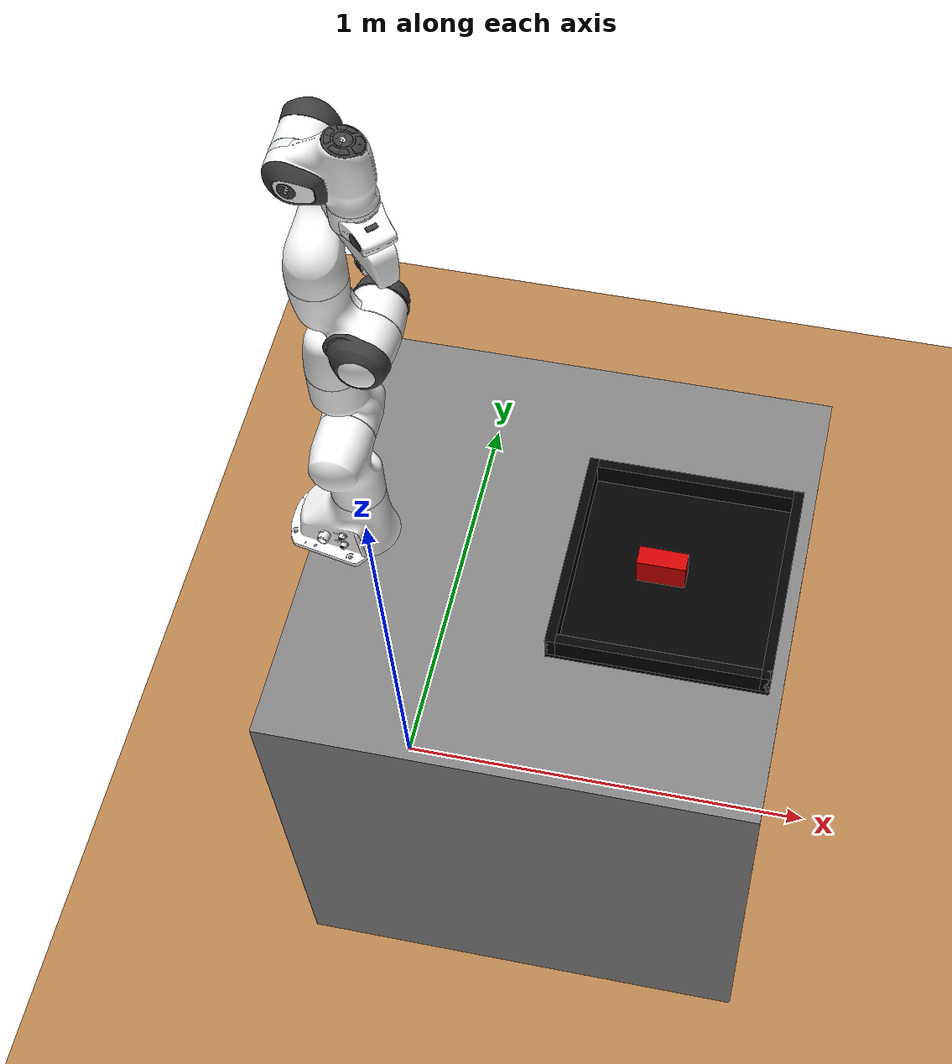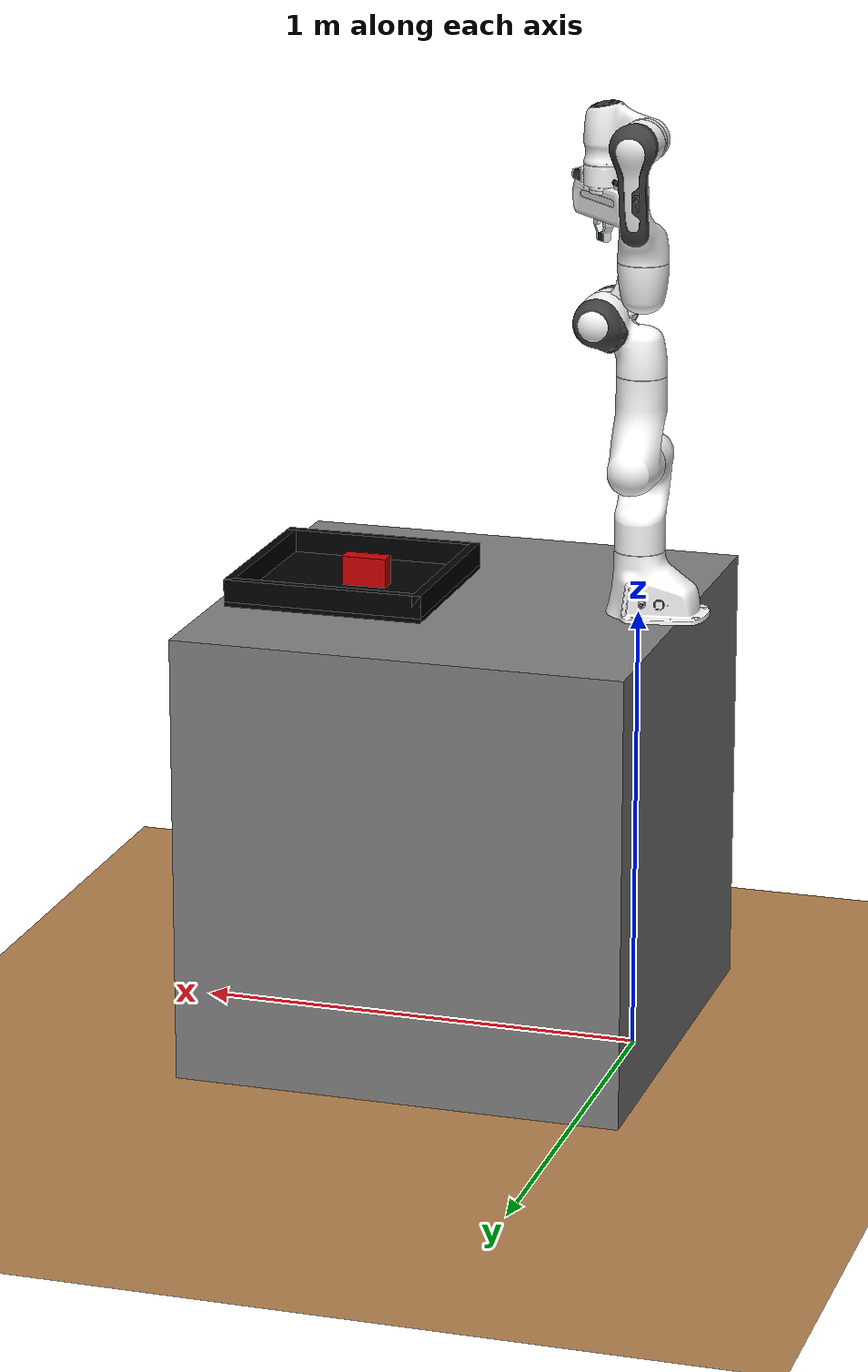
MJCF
<mujoco model="cube_scene">
  <!-- Add Franka robot -->
  <include file="panda.xml"/>

  <!-- noslip_iterations is important otherwise object slip when grasped
       (more than 3 will just slow you down and have no other effect) -->
  <option gravity="0 0 -9.81" timestep="0.001" noslip_iterations="3"
          impratio="20" cone="elliptic" density="1.2" viscosity="0.00002" integrator="implicitfast">
    <flag multiccd="enable"/>
  </option>
        <!-- impratio="20" cone="elliptic" density="1.2" viscosity="0.00002" integrator="implicitfast"> -->

  <visual>
    <map znear="0.01" zfar="50"/>
    <!-- For visualize contact -->
    <scale forcewidth="0.03" contactwidth="0.03" contactheight="0.01"/>
    <rgba contactpoint="0 0.5 0 1" />
    <global offwidth="400" offheight="400"/>
  </visual>

  <asset>
    <texture type="skybox" builtin="gradient" rgb1="0.3 0.5 0.7" rgb2="0 0 0" width="512" height="512"/>

    <texture type="2d" name="groundplane" builtin="checker" mark="edge" rgb1="0.2 0.3 0.4"
        rgb2="0.1 0.2 0.3" markrgb="0.8 0.8 0.8" width="300" height="300"/>
    <material name="groundplane" texture="groundplane" texuniform="true" texrepeat="5 5"
        reflectance="0."/>

    <!-- Floor -->
    <texture name="texplane" file="textures/wood-tiles.png" type="2d"/>
    <material name="floorplane" reflectance="0." shininess="0.0" specular="0.0" texrepeat="2 2" texture="texplane" texuniform="true"/>

    <!-- bins -->
    <texture file="textures/light-wood.png" type="2d" name="tex-light-wood"/>
    <texture file="textures/dark-wood.png" type="2d" name="tex-dark-wood"/>
    <material name="light-wood" reflectance="0" texrepeat="15 15" texture="tex-light-wood" texuniform="true"/>
    <material name="dark-wood" reflectance="0" texrepeat="5 5" texture="tex-dark-wood" texuniform="true"/>

    <!-- paper-wood table texture and material (NOTE: cube needs use square images) -->
    <texture file="textures/paper-wood.png" type="cube" name="tex-paperwood"/>
    <material name="table_paperwood" texture="tex-paperwood" texrepeat="1 1" shininess="0.0" reflectance="0.0" specular="0."/>

  </asset>

  <worldbody>
    <!-- Floor -->
    <geom name="floor" type="plane" material="floorplane" pos="0 0 0" size="5 5 0.1"/>

    <!-- Add the light -->
    <light name="light_1" directional="true" castshadow="false" pos="0 2 4" dir="0.4 -2 -4" diffuse=".7 .7 .7"/>
    <light name="light_2" directional="false" castshadow="true" pos="0.4 0 4" dir="0.15 0 -1" cutoff="60" exponent="30" diffuse=".5 .5 .5"/>

    <!-- Table  -->
    <body name="table" pos="0.4 0 0.5">
      <geom name="table_collision" type="box" size="0.5 0.5 0.5"/>
      <geom name="table_visual" type="box" contype="0" conaffinity="0" group="1" size="0.5 0.5 0.5" material="table_paperwood"/>
    </body>

    <!-- Container -->
    <body name="container" pos="0.65 0 1">
      <geom name="container_bottom_collision" type="box" priority="1" size="0.224 0.224 0.005" rgba="0 0 0 1" friction="0.5 0.005 0.0001" pos="0 0 0.005"/>
      <geom name="container_bottom_visual" type="box" contype="0" conaffinity="0" group="1" size="0.224 0.224 0.005" material="table_paperwood" pos="0 0 0.005"/>

      <geom name="container_left_collision" type="box" solref="0.0005 1" priority="1" size="0.224 0.01 0.025" rgba="0 0 0 1" friction="0.5 0.005 0.0001" pos="0 0.214 0.035"/>
      <geom name="container_left_visual" type="box" contype="0" conaffinity="0" group="1" size="0.224 0.01 0.025" material="light-wood" pos="0 0.214 0.035"/>

      <geom name="container_right_collision" type="box" solref="0.0005 1" priority="1" size="0.224 0.01 0.025" rgba="0 0 0 1" friction="0.5 0.005 0.0001" pos="0 -0.214 0.035"/>
      <geom name="container_right_visual" type="box" contype="0" conaffinity="0" group="1" size="0.224 0.01 0.025" material="light-wood" pos="0 -0.214 0.035"/>

      <geom name="container_far_collision" type="box" solref="0.005 1" priority="1" size="0.01 0.224 0.025" rgba="0 0 0 1" friction="0.5 0.005 0.0001" pos="0.214 0 0.035"/>
      <geom name="container_far_visual" type="box" contype="0" conaffinity="0" group="1" size="0.01 0.224 0.025" material="light-wood" pos="0.214 0 0.035"/>

      <geom name="container_close_collision" type="box" solref="0.005 1" priority="1" size="0.01 0.224 0.025" rgba="0 0 0 1" friction="0.5 0.005 0.0001" pos="-0.214 0 0.035"/>
      <geom name="container_close_visual" type="box" contype="0" conaffinity="0" group="1" size="0.01 0.224 0.025" material="light-wood" pos="-0.214 0 0.035"/>
    </body>

    <!-- Objects -->
      <body name="cube" pos="0.62 0.0 1.04" euler="1.570 0 0">
            <freejoint name="cube"/>
            <!-- Flip on the left wall (tightly, almos touch) -->
            <geom name="cube" type="box" size="0.05 0.035 0.02" rgba="0.8 0 0 1"
                  friction="1 0.005 0.0001" mass="0.1" condim="4"/>
      </body>

    <!-- Camera views -->
    <camera name="sensor_1" mode="fixed" pos="0.65 0.65 1.65" euler="-0.7853975 0. 3.1415"/>
    <camera name="sensor_2" mode="fixed" pos="1.00 0.65 1.65" euler="-0.7853975 0.34906585 3.1415"/>
    <camera name="sensor_3" mode="fixed" pos="0.30 0.65 1.65" euler="-0.7853975 -0.34906585 3.1415"/>
    <camera name="frontview" mode="fixed" pos="1.6 0 1.45" quat="0.56 0.43 0.43 0.56"/>

  </worldbody>

  <!-- Set qpos to makesure the robot will direct move to the pos
       ctrl is the control signal (torques/positions) have to wait to mj_step -->
  <keyframe>
    <key name="home"
        qpos="0 0.48 0 -1.84 0 2.16 0.7853 0.04 0.04
              0.62 0. 1.04 0.7071068 0.7071068 0 0"
        ctrl="0 0.48 0 -1.84 0 2.16 0.7853 0.08"/>
    <key name="home_2"
        qpos="0 -0.7853 0 -2.35609 0 1.57079 0.7853 0.04 0.04
              0.62 0. 1.04 0.7071068 0.7071068 0 0"
        ctrl="0 -0.7853 0 -2.35609 0 1.57079 0.7853 0.08"/>
  </keyframe>
</mujoco>

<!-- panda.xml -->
<mujoco model="panda">
  <compiler angle="radian" autolimits="true"/>

  <option integrator="implicit"/>

  <default>
    <default class="panda">
      <material specular="0.5" shininess="0.25"/>
      <joint armature="0.1" damping="1" axis="0 0 1" range="-2.8973 2.8973"/>
      <general dyntype="none" biastype="affine" ctrlrange="-2.8973 2.8973" forcerange="-87 87"/>

      <default class="finger">
        <!-- Ref from the robosuit -->
        <!-- NOTE: More damping to slow donw finger closing -->
        <joint axis="0 1 0" type="slide" range="0 0.04"
               damping="1000" armature="1.0" frictionloss=".0" stiffness="100"/>
      </default>

      <default class="visual">
        <geom type="mesh" contype="0" conaffinity="0" group="2"/>
      </default>

      <default class="collision">
        <geom type="mesh" group="3" rgba="0 0.5 0 0.5"/>
        <default class="finger_collision">
          <geom type="mesh" group="3" rgba="0 1 0 1"
                solref="0.02 1" friction = "1 0.005 0.0001" condim="4"/>
        </default>
        <default class="fingertip_pad_collision_1">
          <geom type="box" size="0.0085 0.004 0.0085" pos="0 0.0055 0.0445" rgba="0 0 1 1"
                solref="0.01 0.5" friction = "2 0.05 0.0001"/>
        </default>
        <default class="fingertip_pad_collision_2">
          <geom type="box" size="0.003 0.002 0.003" pos="0.0055 0.002 0.05" rgba="1 0 0 1"
                solref="0.01 0.5" friction = "2 0.05 0.0001"/>
        </default>
        <default class="fingertip_pad_collision_3">
          <geom type="box" size="0.003 0.002 0.003" pos="-0.0055 0.002 0.05" rgba="1 0 0 1"
                solref="0.01 0.5" friction = "2 0.05 0.0001"/>
        </default>
        <default class="fingertip_pad_collision_4">
          <geom type="box" size="0.003 0.002 0.0035" pos="0.0055 0.002 0.0395" rgba="1 0 0 1"
                solref="0.01 0.5" friction = "2 0.05 0.0001"/>
        </default>
        <default class="fingertip_pad_collision_5">
          <geom type="box" size="0.003 0.002 0.0035" pos="-0.0055 0.002 0.0395" rgba="1 0 0 1"
                solref="0.01 0.5" friction = "2 0.05 0.0001"/>
        </default>
      </default>

    </default>
  </default>

  <asset>
    <material class="panda" name="white" rgba="1 1 1 1"/>
    <material class="panda" name="off_white" rgba="0.901961 0.921569 0.929412 1"/>
    <material class="panda" name="black" rgba="0.25 0.25 0.25 1"/>
    <material class="panda" name="green" rgba="0 1 0 1"/>
    <material class="panda" name="light_blue" rgba="0.039216 0.541176 0.780392 1"/>

    <!-- Collision meshes -->
    <mesh name="link0_c" file="assets/link0.stl"/>
    <mesh name="link1_c" file="assets/link1.stl"/>
    <mesh name="link2_c" file="assets/link2.stl"/>
    <mesh name="link3_c" file="assets/link3.stl"/>
    <mesh name="link4_c" file="assets/link4.stl"/>
    <mesh name="link5_c0" file="assets/link5_collision_0.obj"/>
    <mesh name="link5_c1" file="assets/link5_collision_1.obj"/>
    <mesh name="link5_c2" file="assets/link5_collision_2.obj"/>
    <mesh name="link6_c" file="assets/link6.stl"/>
    <mesh name="link7_c" file="assets/link7.stl"/>
    <mesh name="hand_c" file="assets/hand.stl"/>

    <!-- Visual meshes -->
    <mesh file="assets/link0_0.obj"/>
    <mesh file="assets/link0_1.obj"/>
    <mesh file="assets/link0_2.obj"/>
    <mesh file="assets/link0_3.obj"/>
    <mesh file="assets/link0_4.obj"/>
    <mesh file="assets/link0_5.obj"/>
    <mesh file="assets/link0_7.obj"/>
    <mesh file="assets/link0_8.obj"/>
    <mesh file="assets/link0_9.obj"/>
    <mesh file="assets/link0_10.obj"/>
    <mesh file="assets/link0_11.obj"/>
    <mesh file="assets/link1.obj"/>
    <mesh file="assets/link2.obj"/>
    <mesh file="assets/link3_0.obj"/>
    <mesh file="assets/link3_1.obj"/>
    <mesh file="assets/link3_2.obj"/>
    <mesh file="assets/link3_3.obj"/>
    <mesh file="assets/link4_0.obj"/>
    <mesh file="assets/link4_1.obj"/>
    <mesh file="assets/link4_2.obj"/>
    <mesh file="assets/link4_3.obj"/>
    <mesh file="assets/link5_0.obj"/>
    <mesh file="assets/link5_1.obj"/>
    <mesh file="assets/link5_2.obj"/>
    <mesh file="assets/link6_0.obj"/>
    <mesh file="assets/link6_1.obj"/>
    <mesh file="assets/link6_2.obj"/>
    <mesh file="assets/link6_3.obj"/>
    <mesh file="assets/link6_4.obj"/>
    <mesh file="assets/link6_5.obj"/>
    <mesh file="assets/link6_6.obj"/>
    <mesh file="assets/link6_7.obj"/>
    <mesh file="assets/link6_8.obj"/>
    <mesh file="assets/link6_9.obj"/>
    <mesh file="assets/link6_10.obj"/>
    <mesh file="assets/link6_11.obj"/>
    <mesh file="assets/link6_12.obj"/>
    <mesh file="assets/link6_13.obj"/>
    <mesh file="assets/link6_14.obj"/>
    <mesh file="assets/link6_15.obj"/>
    <mesh file="assets/link6_16.obj"/>
    <mesh file="assets/link7_0.obj"/>
    <mesh file="assets/link7_1.obj"/>
    <mesh file="assets/link7_2.obj"/>
    <mesh file="assets/link7_3.obj"/>
    <mesh file="assets/link7_4.obj"/>
    <mesh file="assets/link7_5.obj"/>
    <mesh file="assets/link7_6.obj"/>
    <mesh file="assets/link7_7.obj"/>
    <mesh file="assets/hand_0.obj"/>
    <mesh file="assets/hand_1.obj"/>
    <mesh file="assets/hand_2.obj"/>
    <mesh file="assets/hand_3.obj"/>
    <mesh file="assets/hand_4.obj"/>
    <mesh file="assets/finger_0.obj"/>
    <mesh file="assets/finger_1.obj"/>
  </asset>

  <worldbody>
    <body name="link0" childclass="panda" pos="0 0 1">
      <inertial mass="0.629769" pos="-0.041018 -0.00014 0.049974"
          fullinertia="0.00315 0.00388 0.004285 8.2904e-7 0.00015 8.2299e-6"/>
      <geom mesh="link0_0" material="off_white" class="visual"/>
      <geom mesh="link0_1" material="black" class="visual"/>
      <geom mesh="link0_2" material="off_white" class="visual"/>
      <geom mesh="link0_3" material="black" class="visual"/>
      <geom mesh="link0_4" material="off_white" class="visual"/>
      <geom mesh="link0_5" material="black" class="visual"/>
      <geom mesh="link0_7" material="white" class="visual"/>
      <geom mesh="link0_8" material="white" class="visual"/>
      <geom mesh="link0_9" material="black" class="visual"/>
      <geom mesh="link0_10" material="off_white" class="visual"/>
      <geom mesh="link0_11" material="white" class="visual"/>
      <geom mesh="link0_c" class="collision"/>
      <body name="link1" pos="0 0 0.333">
        <inertial mass="4.970684" pos="0.003875 0.002081 -0.04762"
            fullinertia="0.70337 0.70661 0.0091170 -0.00013900 0.0067720 0.019169"/>
        <joint name="joint1"/>
        <geom material="white" mesh="link1" class="visual"/>
        <geom mesh="link1_c" class="collision"/>
        <body name="link2" quat="1 -1 0 0">
          <inertial mass="0.646926" pos="-0.003141 -0.02872 0.003495"
              fullinertia="0.0079620 2.8110e-2 2.5995e-2 -3.925e-3 1.0254e-2 7.04e-4"/>
          <joint name="joint2" range="-1.7628 1.7628"/>
          <geom material="white" mesh="link2" class="visual"/>
          <geom mesh="link2_c" class="collision"/>
          <body name="link3" pos="0 -0.316 0" quat="1 1 0 0">
            <joint name="joint3"/>
            <inertial mass="3.228604" pos="2.7518e-2 3.9252e-2 -6.6502e-2"
                fullinertia="3.7242e-2 3.6155e-2 1.083e-2 -4.761e-3 -1.1396e-2 -1.2805e-2"/>
            <geom mesh="link3_0" material="white" class="visual"/>
            <geom mesh="link3_1" material="white" class="visual"/>
            <geom mesh="link3_2" material="white" class="visual"/>
            <geom mesh="link3_3" material="black" class="visual"/>
            <geom mesh="link3_c" class="collision"/>
            <body name="link4" pos="0.0825 0 0" quat="1 1 0 0">
              <inertial mass="3.587895" pos="-5.317e-2 1.04419e-1 2.7454e-2"
                  fullinertia="2.5853e-2 1.9552e-2 2.8323e-2 7.796e-3 -1.332e-3 8.641e-3"/>
              <joint name="joint4" range="-3.0718 -0.0698"/>
              <geom mesh="link4_0" material="white" class="visual"/>
              <geom mesh="link4_1" material="white" class="visual"/>
              <geom mesh="link4_2" material="black" class="visual"/>
              <geom mesh="link4_3" material="white" class="visual"/>
              <geom mesh="link4_c" class="collision"/>
              <body name="link5" pos="-0.0825 0.384 0" quat="1 -1 0 0">
                <inertial mass="1.225946" pos="-1.1953e-2 4.1065e-2 -3.8437e-2"
                    fullinertia="3.5549e-2 2.9474e-2 8.627e-3 -2.117e-3 -4.037e-3 2.29e-4"/>
                <joint name="joint5"/>
                <geom mesh="link5_0" material="black" class="visual"/>
                <geom mesh="link5_1" material="white" class="visual"/>
                <geom mesh="link5_2" material="white" class="visual"/>
                <geom mesh="link5_c0" class="collision"/>
                <geom mesh="link5_c1" class="collision"/>
                <geom mesh="link5_c2" class="collision"/>
                <body name="link6" quat="1 1 0 0">
                  <inertial mass="1.666555" pos="6.0149e-2 -1.4117e-2 -1.0517e-2"
                      fullinertia="1.964e-3 4.354e-3 5.433e-3 1.09e-4 -1.158e-3 3.41e-4"/>
                  <joint name="joint6" range="-0.0175 3.7525"/>
                  <geom mesh="link6_0" material="off_white" class="visual"/>
                  <geom mesh="link6_1" material="white" class="visual"/>
                  <geom mesh="link6_2" material="black" class="visual"/>
                  <geom mesh="link6_3" material="white" class="visual"/>
                  <geom mesh="link6_4" material="white" class="visual"/>
                  <geom mesh="link6_5" material="white" class="visual"/>
                  <geom mesh="link6_6" material="white" class="visual"/>
                  <geom mesh="link6_7" material="light_blue" class="visual"/>
                  <geom mesh="link6_8" material="light_blue" class="visual"/>
                  <geom mesh="link6_9" material="black" class="visual"/>
                  <geom mesh="link6_10" material="black" class="visual"/>
                  <geom mesh="link6_11" material="white" class="visual"/>
                  <geom mesh="link6_12" material="green" class="visual"/>
                  <geom mesh="link6_13" material="white" class="visual"/>
                  <geom mesh="link6_14" material="black" class="visual"/>
                  <geom mesh="link6_15" material="black" class="visual"/>
                  <geom mesh="link6_16" material="white" class="visual"/>
                  <geom mesh="link6_c" class="collision"/>
                  <body name="link7" pos="0.088 0 0" quat="1 1 0 0">
                    <inertial mass="7.35522e-01" pos="1.0517e-2 -4.252e-3 6.1597e-2"
                        fullinertia="1.2516e-2 1.0027e-2 4.815e-3 -4.28e-4 -1.196e-3 -7.41e-4"/>
                    <joint name="joint7"/>
                    <geom mesh="link7_0" material="white" class="visual"/>
                    <geom mesh="link7_1" material="black" class="visual"/>
                    <geom mesh="link7_2" material="black" class="visual"/>
                    <geom mesh="link7_3" material="black" class="visual"/>
                    <geom mesh="link7_4" material="black" class="visual"/>
                    <geom mesh="link7_5" material="black" class="visual"/>
                    <geom mesh="link7_6" material="black" class="visual"/>
                    <geom mesh="link7_7" material="white" class="visual"/>
                    <geom mesh="link7_c" class="collision"/>

                    <!-- Hand and fingers -->
                    <body name="hand" pos="0 0 0.107" quat="0.9238795 0 0 -0.3826834">
                      <inertial mass="0.73" pos="-0.01 0 0.03" diaginertia="0.001 0.0025 0.0017"/>
                      <geom mesh="hand_0" material="off_white" class="visual"/>
                      <geom mesh="hand_1" material="black" class="visual"/>
                      <geom mesh="hand_2" material="black" class="visual"/>
                      <geom mesh="hand_3" material="white" class="visual"/>
                      <geom mesh="hand_4" material="off_white" class="visual"/>
                      <geom name="hand" type="mesh" mesh="hand_c" class="collision"
                            conaffinity="1" contype="0" solref="0.02 1" condim="4"/>

                      <!-- Left finger -->
                      <body name="left_finger" pos="0 0 0.0584">
                        <inertial mass="0.015" pos="0 0 0" diaginertia="2.375e-6 2.375e-6 7.5e-7"/>
                        <joint name="finger_joint1" class="finger"/>

                        <geom mesh="finger_0" material="off_white" class="visual"/>
                        <geom mesh="finger_1" material="black" class="visual"/>
                        <geom mesh="finger_0" class="finger_collision"/>
                        <geom class="fingertip_pad_collision_1"/>
                        <geom class="fingertip_pad_collision_2"/>
                        <geom class="fingertip_pad_collision_3"/>
                        <geom class="fingertip_pad_collision_4"/>
                        <geom class="fingertip_pad_collision_5"/>
                      </body>

                      <!-- Right finger -->
                      <body name="right_finger" pos="0 0 0.0584" quat="0 0 0 1">
                        <inertial mass="0.015" pos="0 0 0" diaginertia="2.375e-6 2.375e-6 7.5e-7"/>
                        <joint name="finger_joint2" class="finger"/>

                        <geom mesh="finger_0" material="off_white" class="visual"/>
                        <geom mesh="finger_1" material="black" class="visual"/>
                        <geom mesh="finger_0" class="finger_collision"/>
                        <geom class="fingertip_pad_collision_1"/>
                        <geom class="fingertip_pad_collision_2"/>
                        <geom class="fingertip_pad_collision_3"/>
                        <geom class="fingertip_pad_collision_4"/>
                        <geom class="fingertip_pad_collision_5"/>
                      </body>
                      <!-- CHECKED -->
                      <site name="EEF" pos="0 0 0.114" size="0.01" rgba="0 0 0 0."/>
                    </body>
                  </body>
                </body>
              </body>
            </body>
          </body>
        </body>
      </body>
    </body>
  </worldbody>

  <tendon>
    <fixed name="split">
      <joint joint="finger_joint1" coef="0.5"/>
      <joint joint="finger_joint2" coef="0.5"/>
    </fixed>
  </tendon>

  <equality>
    <joint joint1="finger_joint1" joint2="finger_joint2" solimp="0.95 0.99 0.001" solref="0.005 1"/>
  </equality>

  <actuator>
    <general class="panda" name="actuator1" joint="joint1" gainprm="4500" biasprm="0 -4500 -450"/>
    <general class="panda" name="actuator2" joint="joint2" gainprm="4500" biasprm="0 -4500 -450"
        ctrlrange="-1.7628 1.7628"/>
    <general class="panda" name="actuator3" joint="joint3" gainprm="3500" biasprm="0 -3500 -350"/>
    <general class="panda" name="actuator4" joint="joint4" gainprm="3500" biasprm="0 -3500 -350"
        ctrlrange="-3.0718 -0.0698"/>
    <general class="panda" name="actuator5" joint="joint5" gainprm="2000" biasprm="0 -2000 -200"
        forcerange="-12 12"/>
    <general class="panda" name="actuator6" joint="joint6" gainprm="2000" biasprm="0 -2000 -200"
        forcerange="-12 12" ctrlrange="-0.0175 3.7525"/>
    <general class="panda" name="actuator7" joint="joint7" gainprm="2000" biasprm="0 -2000 -200"
        forcerange="-12 12"/>
    <!-- Remap original ctrlrange (0, 0.04) to (0, 255): 0.04 * 100 / 255 = 0.01568627451 -->
    <!-- NOTE: 0.01568627451 is not enough for grasping a cube which friction = 1, mass = 0.1 -->
    <!-- NOTE: We set a huge gain (0.01568627451 -> 1e6) to makesure the robot can pick up a cube with mass = 0.6 -->
    <general class="panda" name="actuator8" tendon="split" forcerange="-1000 1000" ctrlrange="0 1"
        gainprm="5e6 0 0" biasprm="0 -5e6 -10"/>

  </actuator>
  <sensor>
      <force name="force_ee" site="EEF"/>
      <torque name="torque_ee" site="EEF"/>
  </sensor>
</mujoco>
